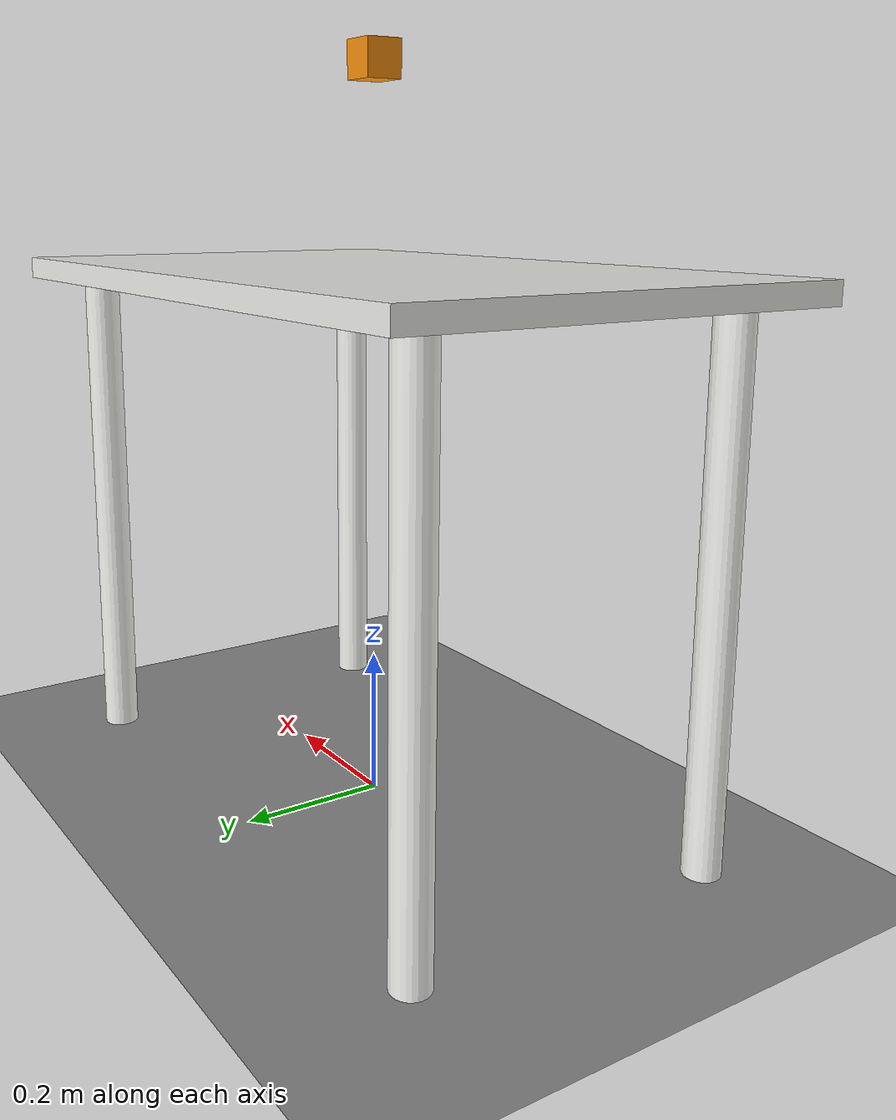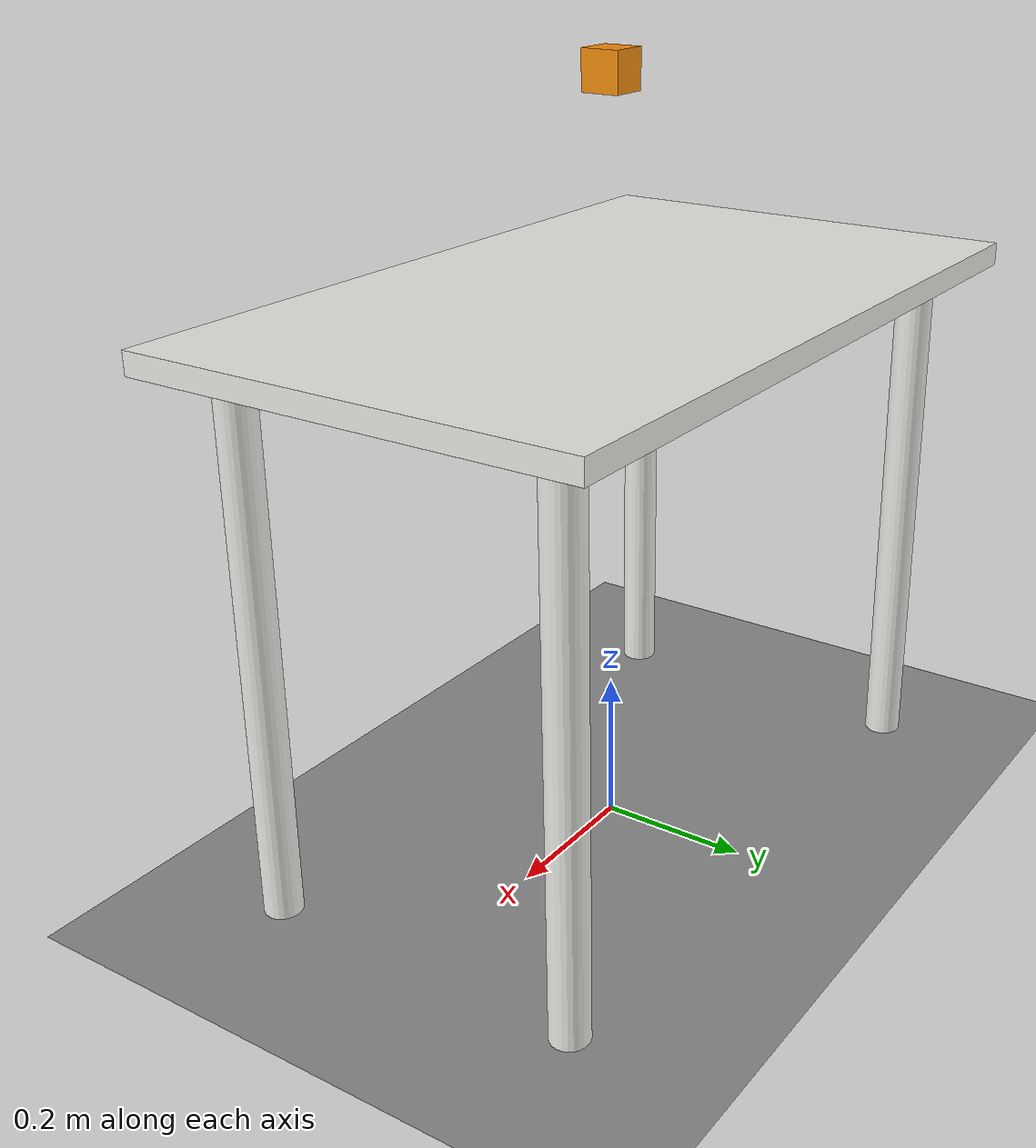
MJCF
<mujoco model="linnmon_adils_spawn_cube_scene">

  <compiler angle="radian" autolimits="true"/>

  <option gravity="0 0 -9.81" timestep="0.002"/>

  <visual>
    <headlight diffuse="0.3 0.3 0.3" ambient="0.4 0.4 0.4" specular="0.1 0.1 0.1"/>
    <quality shadowsize="4096"/>
  </visual>

  <asset>
    <material name="table_white_mat" rgba="0.92 0.92 0.90 1" specular="0.15" shininess="0.2" reflectance="0.05"/>
    <material name="floor_mat" rgba="0.55 0.55 0.55 1" specular="0.05" shininess="0.0"/>
    <material name="cube_mat" rgba="0.95 0.55 0.05 1" specular="0.3" shininess="0.3"/>
  </asset>

  <default>
    <default class="table_collision">
      <geom contype="1" conaffinity="1" condim="3" friction="0.6 0.01 0.001" solref="0.005 1" solimp="0.95 0.99 0.001"/>
    </default>
    <default class="cube_collision">
      <geom contype="1" conaffinity="1" condim="4" friction="0.8 0.02 0.001" solref="0.005 1" solimp="0.95 0.99 0.001"/>
    </default>
  </default>

  <worldbody>
    <light name="top_light" pos="0 0 2.5" dir="0 0 -1" diffuse="0.6 0.6 0.6" specular="0.1 0.1 0.1" castshadow="true"/>

    <camera name="table_view" pos="1.6 -1.6 1.3" xyaxes="0.707 0.707 0 -0.4 0.4 0.82"/>

    <!-- Floor: static plane at Z = 0 -->
    <geom name="floor" type="plane" size="2.5 2.5 0.05" pos="0 0 0" material="floor_mat" class="table_collision"/>

    <!-- IKEA LINNMON / ADILS table, static. Copied from table_scene.xml. -->
    <body name="table" pos="0 0 0">

      <geom name="tabletop" type="box" size="0.50 0.30 0.015" pos="0 0 0.725"
            material="table_white_mat" class="table_collision"/>

      <geom name="table_leg_front_left" type="cylinder" size="0.025 0.355" pos="0.42 0.22 0.355"
            material="table_white_mat" class="table_collision"/>
      <geom name="table_leg_front_right" type="cylinder" size="0.025 0.355" pos="0.42 -0.22 0.355"
            material="table_white_mat" class="table_collision"/>
      <geom name="table_leg_back_left" type="cylinder" size="0.025 0.355" pos="-0.42 0.22 0.355"
            material="table_white_mat" class="table_collision"/>
      <geom name="table_leg_back_right" type="cylinder" size="0.025 0.355" pos="-0.42 -0.22 0.355"
            material="table_white_mat" class="table_collision"/>

    </body>

    <body name="cube" pos="0 0 1.0">
      <freejoint name="cube_freejoint"/>
      <geom name="cube_geom" type="box" size="0.025 0.025 0.025" mass="0.05"
            material="cube_mat" class="cube_collision"/>
    </body>
  </worldbody>
</mujoco>
